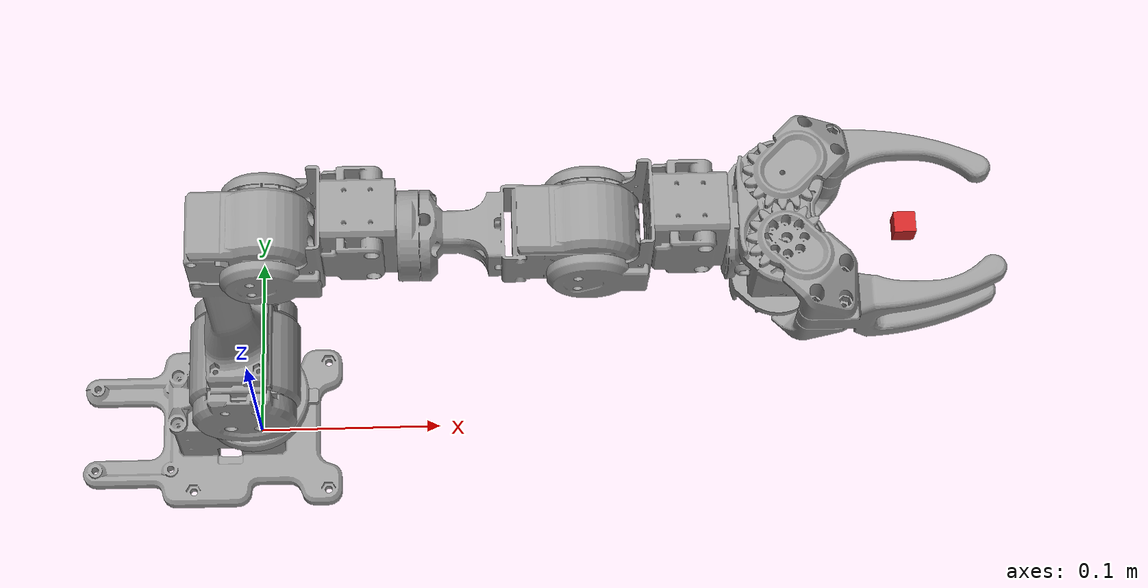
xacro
<?xml version="1.0"?>
<!-- Open_Manipulator Chain -->
<robot name="open_manipulator" xmlns:xacro="http://ros.org/wiki/xacro">

  <!-- Import all Gazebo-customization elements, including Gazebo colors -->
  <xacro:include filename="$(find open_manipulator_description)/urdf/open_manipulator.gazebo.xacro" />
  <!-- Import Rviz colors -->
  <xacro:include filename="$(find open_manipulator_description)/urdf/materials.xacro" />

  <!-- Transmission macro -->
  <xacro:macro name="SimpleTransmission" params="joint n">
    <transmission name="tran${n}">
      <type>transmission_interface/SimpleTransmission</type>
      <joint name="${joint}">
        <hardwareInterface>hardware_interface/PositionJointInterface</hardwareInterface>
      </joint>
      <actuator name="motor${n}">
        <hardwareInterface>hardware_interface/PositionJointInterface</hardwareInterface>
        <mechanicalReduction>1</mechanicalReduction>
      </actuator>
    </transmission>
  </xacro:macro>

  <!-- World -->
  <link name="world">
  </link>

  <!-- World fixed joint-->
  <joint name="world_fixed" type="fixed">
    <origin xyz="0 0 0" rpy="0 0 0"/>
    <parent link="world"/>
    <child link="link1"/>
  </joint>

  <!-- Link 1 -->
  <link name="link1">
    <visual>
      <origin xyz="0 0 0.027" rpy="${-pi/2} 0 0" />
      <geometry>
        <mesh filename="package://open_manipulator_description/meshes/chain_link1.stl" />
      </geometry>
      <material name="grey"/>
    </visual>

    <collision>
      <origin xyz="0 0 0.027" rpy="${-pi/2} 0 0" />
      <geometry>
        <mesh filename="package://open_manipulator_description/meshes/chain_link1.stl" />
      </geometry>
    </collision>

    <!--            iyy="2.3447E-05" iyz="-1.5454E-07" -->
    <inertial>
      <origin xyz="3.0876154e-04 0.0000000e+00 -1.2176461e-04" />
      <mass value="7.9119962e-02" />
      <inertia ixx="1.2505234e-05" ixy="0.0" ixz="-1.7855208e-07"
               iyy="2.1898364e-05" iyz="0.0"
               izz="1.9267361e-05" />
    </inertial>

  </link>

  <!-- Joint 1 -->
  <joint name="joint1" type="revolute">
    <parent link="link1" />
    <child link="link2" />
    <origin xyz="0 0 0.0515" rpy="0 0 0" />
    <axis xyz="0 0 1" />
    <limit velocity="4.8" effort="1" lower="${-pi*0.916}" upper="${pi*0.916}" />
  </joint>

  <!-- Transmission 1 -->
  <xacro:SimpleTransmission n="1" joint="joint1" />

  <!--  Link 2 -->
  <link name="link2">
    <visual>
      <origin xyz="0 0 0" rpy="0 0 ${-pi/2}" />
      <geometry>
        <mesh filename="package://open_manipulator_description/meshes/chain_link2.stl" />
      </geometry>
      <material name="grey"/>
    </visual>

    <collision>
      <origin xyz="0 0 0" rpy="0 0 ${pi/2}" />
      <geometry>
        <mesh filename="package://open_manipulator_description/meshes/chain_link2.stl" />
      </geometry>
    </collision>

    <!--            iyy="3.68198693987775E-05" iyz="-1.1111795426955E-06" -->
    <inertial>
      <origin xyz="-3.0184870e-04 5.4043684e-04 ${0.018 + 2.9433464e-02}" />
      <mass value="9.8406837e-02" />
      <inertia ixx="3.4543422e-05" ixy="-1.6031095e-08" ixz="-3.8375155e-07"
               iyy="3.2689329e-05" iyz="2.8511935e-08"
               izz="1.8850320e-05" />
    </inertial>
  </link>

  <!--  Joint 2 -->
  <joint name="joint2" type="revolute">
    <parent link="link2" />
    <child link="link3" />
    <origin xyz="0 0 0.05475" rpy="0 0 0" />
    <axis xyz="0 1 0" />
    <limit velocity="4.8" effort="1" lower="${-pi*0.6679}" upper="${pi*0.5965}" />
  </joint>

  <!-- Transmission 2 -->
  <xacro:SimpleTransmission n="2" joint="joint2" />

  <!--  Link 3 -->
  <link name="link3">
    <visual>
      <origin xyz="0 -0.026 0" rpy="${pi/2} 0 0" />
      <geometry>
        <mesh filename="package://open_manipulator_description/meshes/chain_link3.stl" />
      </geometry>
      <material name="grey"/>
    </visual>

    <collision>
      <origin xyz="0 -0.026 0" rpy="${pi/2} 0 0" />
      <geometry>
        <mesh filename="package://open_manipulator_description/meshes/chain_link3.stl" />
      </geometry>
    </collision>

    <!--            iyy="2.42965312448389E-05" iyz="1.56967790646472E-06" -->
    <inertial>
      <origin xyz="1.0308393e-02 3.7743363e-04 1.0170197e-01" />
      <mass value="1.3850917e-01" />
      <inertia ixx="3.3055381e-04" ixy="-9.7940978e-08" ixz="-3.8505711e-05"
               iyy="3.4290447e-04" iyz="-1.5717516e-06"
               izz="6.0346498e-05" />
    </inertial>
  </link>

  <!--  Joint 3 -->
  <joint name="joint3" type="revolute">
    <parent link="link3" />
    <child link="link4" />
    <origin xyz="0.024 0 0.1684" rpy="0 0 0" />
    <axis xyz="0 1 0" />
    <limit velocity="4.8" effort="1" lower="${-pi*0.5735}" upper="${pi*0.448}" />
  </joint>

  <!-- Transmission 3 -->
  <xacro:SimpleTransmission n="3" joint="joint3" />

  <!--  Link 4 -->
  <link name="link4">
    <visual>
      <origin xyz="0 0.019 0" rpy="${pi/2} ${-pi/2} 0" />
      <geometry>
        <mesh filename="package://open_manipulator_description/meshes/chain_link4.stl" />
      </geometry>
      <material name="grey"/>
    </visual>

    <collision>
      <origin xyz="0 0.019 0" rpy="${pi/2} ${-pi/2} 0" />
      <geometry>
        <mesh filename="package://open_manipulator_description/meshes/chain_link4.stl" />
      </geometry>
    </collision>

    <!--            iyy="6.16523427095478E-06" iyz="-7.18764926930745E-15" -->
    <inertial>
      <origin xyz="9.0909590e-02 3.8929816e-04 2.2413279e-04" />
      <mass value="1.3274562e-01" />
      <inertia ixx="3.0654178e-05" ixy="-1.2764155e-06" ixz="-2.6874417e-07"
               iyy="2.4230292e-04" iyz="1.1559550e-08"
               izz="2.5155057e-04" />
    </inertial>

  </link>

  <!--  Joint 4 -->
  <joint name="joint4" type="revolute">
    <parent link="link4" />
    <child link="link5" />
    <origin xyz="0.062 0 0" rpy="0 0 0" />
    <axis xyz="1 0 0" />
    <limit velocity="4.8" effort="1" lower="${-pi*0.994}" upper="${pi*0.994}" />
  </joint>

  <!-- Transmission 4 -->
  <xacro:SimpleTransmission n="4" joint="joint4" />

  <!--  Link 5 -->
  <link name="link5">
    <visual>
      <origin xyz="0 0 0" rpy="${pi/2} ${pi} ${pi/2}" />
      <geometry>
        <mesh filename="package://open_manipulator_description/meshes/chain_link5.stl" />
      </geometry>
      <material name="grey"/>
    </visual>

    <collision>
      <origin xyz="0 0 0" rpy="${pi/2} ${pi} ${pi/2}" />
      <geometry>
        <mesh filename="package://open_manipulator_description/meshes/chain_link5.stl" />
      </geometry>
    </collision>
    <!--            iyy="6.52473697844542E-05" iyz="1.49110423887788E-06" -->
    <inertial>
      <origin xyz="4.4206755e-02 3.6839985e-07 8.9142216e-03" />
      <mass value="1.4327573e-01" />
      <inertia ixx="8.0870749e-05" ixy="0.0" ixz="-1.0157896e-06"
               iyy="7.5980465e-05" iyz="0.0"
               izz="9.3127351e-05" />
    </inertial>
  </link>

  <!--  Joint 5 -->
  <joint name="joint5" type="revolute">
    <parent link="link5" />
    <child link="link6" />
    <origin xyz="0.088 0 0" rpy="0 0 0" />
    <axis xyz="0 1 0" />
    <limit velocity="4.8" effort="1" lower="${-pi*0.5735}" upper="${pi*0.7073}" />
  </joint>

  <!-- Transmission 5 -->
  <xacro:SimpleTransmission n="5" joint="joint5" />

  <!--  Link 6 -->
  <link name="link6">
    <visual>
      <origin xyz="0 -0.019 0" rpy="${pi/2} ${pi/2} 0" />
      <geometry>
        <mesh filename="package://open_manipulator_description/meshes/chain_link6.stl" />
      </geometry>
      <material name="grey"/>
    </visual>

    <collision>
      <origin xyz="0 -0.019 0" rpy="${pi/2} ${pi/2} 0" />
      <geometry>
        <mesh filename="package://open_manipulator_description/meshes/chain_link6.stl" />
      </geometry>
    </collision>

    <!--            iyy="6.16523427095479E-06" iyz="7.18764844874428E-15" -->
    <inertial>
      <origin xyz="4.4206755e-02 3.6839985e-07 8.9142216e-03" />
      <mass value="1.4327573e-01" />
      <inertia ixx="8.0870749e-05" ixy="0.0" ixz="-1.0157896e-06"
               iyy="7.5980465e-05" iyz="0.0"
               izz="9.3127351e-05" />
    </inertial>
  </link>

  <!--  Joint 6 -->
  <joint name="joint6" type="revolute">
    <parent link="link6" />
    <child link="link7" />
    <origin xyz="0.062 0 0" rpy="0 0 0" />
    <axis xyz="1 0 0" />
    <limit velocity="4.8" effort="1" lower="${-pi*0.994}" upper="${pi*0.994}" />
  </joint>

  <!-- Transmission 6 -->
  <xacro:SimpleTransmission n="6" joint="joint6" />

  <!--  Link 7 -->
  <link name="link7">
    <visual>
      <origin xyz="0 0 0" rpy="0 ${-pi/2} 0" />
      <geometry>
        <mesh filename="package://open_manipulator_description/meshes/chain_link7.stl" />
      </geometry>
      <material name="grey"/>
    </visual>

    <collision>
      <origin xyz="0 0 0" rpy="0 ${-pi/2} 0" />
      <geometry>
        <mesh filename="package://open_manipulator_description/meshes/chain_link7.stl" />
      </geometry>
    </collision>

    <!--            iyy="9.69324841658574E-06" iyz="-2.18474747851751E-06" -->
         <inertial>
           <origin xyz="4.4206755e-02 3.6839985e-07 8.9142216e-03" />
           <mass value="1.4327573e-01" />
           <inertia ixx="8.0870749e-05" ixy="0.0" ixz="-1.0157896e-06"
                    iyy="7.5980465e-05" iyz="0.0"
                    izz="9.3127351e-05" />
         </inertial>
  </link>

  <!--  Gripper link -->
  <link name="gripper_link">
    <visual>
      <origin xyz="0 0 0" rpy="0 0 0" />
      <geometry>
        <mesh filename="package://open_manipulator_description/meshes/chain_link_grip_l.stl" />
      </geometry>
      <material name="grey"/>
    </visual>

    <collision>
      <origin xyz="0 0 0" rpy="0 0 0" />
      <geometry>
        <mesh filename="package://open_manipulator_description/meshes/chain_link_grip_l.stl" />
      </geometry>
    </collision>

    <inertial>
      <origin xyz="-0.00340216508542759 -0.00576540023107835 -2.1799589910998E-09" rpy="0 0 0" />
      <mass value="0.0356307403873285" />
      <inertia ixx="1.81811062489467E-05" ixy="2.51217685396069E-06" ixz="-1.0866660092931E-08"
               iyy="9.13797195647898E-06" iyz="-1.08688133683192E-08"
               izz="1.03452048539682E-05" />
    </inertial>
  </link>

  <!--  Gripper joint -->
  <joint name="gripper" type="revolute">
    <parent link="link7" />
    <child link="gripper_link" />
    <origin xyz="0.026 0.016 0" rpy="0 0 0" />
    <axis xyz="0 0 1" />
    <limit velocity="4.8" effort="1" lower="-0.7133010663668231" upper="1.059980724428978" />
  </joint>

  <!-- Transmission 7 -->
  <xacro:SimpleTransmission n="7" joint="gripper" />

  <!--  Gripper link sub-->
  <link name="gripper_link_sub">
    <visual>
      <origin xyz="0 0 0" rpy="0 0 0" />
      <geometry>
        <mesh filename="package://open_manipulator_description/meshes/chain_link_grip_r.stl" />
      </geometry>
      <material name="grey"/>
    </visual>

    <collision>
      <origin xyz="0 0 0" rpy="0 0 0" />
      <geometry>
        <mesh filename="package://open_manipulator_description/meshes/chain_link_grip_r.stl" />
      </geometry>
    </collision>

    <inertial>
      <origin xyz="0.0347516179427996 0.010629552145661 -0.0270934437190569" rpy="0 0 0" />
      <mass value="0.0460906192162207" />
      <inertia ixx="1.34126147791776E-05" ixy="-8.10308483393553E-06" ixz="-1.05608290826753E-07"
               iyy="2.13311499424932E-05" iyz="-6.10789237260564E-08"
               izz="1.80372747734964E-05" />
    </inertial>
  </link>

  <!--  Gripper joint sub -->
  <joint name="gripper_sub" type="revolute">
    <parent link="link7" />
    <child link="gripper_link_sub" />
    <origin xyz="0.026 -0.016 0" rpy="0 0 0" />
    <axis xyz="0 0 1" />
    <limit velocity="4.8" effort="1" lower="-0.7133010663668231" upper="1.059980724428978" />
    <mimic joint="gripper" multiplier="-1"/>
  </joint>

  <!-- Transmission 8 -->
  <xacro:SimpleTransmission n="8" joint="gripper_sub" />

  <!-- end effector joint -->
  <joint name="end_effector_joint" type="fixed">
    <origin xyz="0.08375 0 0" rpy="0 0 0"/>
    <parent link="link7"/>
    <child link="end_effector_link"/>
  </joint>

  <!-- end effector link -->
  <link name="end_effector_link">
    <visual>
      <origin xyz="0 0 0" rpy="0 0 0"/>
      <geometry>
        <box size="0.01 0.01 0.01" />
      </geometry>
      <material name="red"/>
     </visual>

    <inertial>
      <origin xyz="0 0 0" rpy="0 0 0"/>
      <mass value="0.001"/>
      <inertia ixx="1.0e-06" ixy="0.0" ixz="0.0" iyy="1.0e-06" iyz="0.0" izz="1.0e-06" />
    </inertial>
  </link>

</robot>
